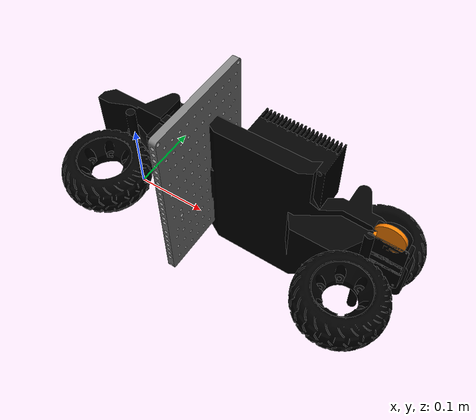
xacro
<?xml version="1.0"?>
<robot xmlns:xacro="http://www.ros.org/wiki/xacro" name="svea">

  <!-- 定义namespace参数，默认为空 -->
  <xacro:arg name="namespace" default="" />
  <xacro:property name="ns" value="$(arg namespace)" />

  <material name="black">
    <color rgba="0 0 0 1"/>
  </material>
  <material name="white">
    <color rgba="1 1 1 1"/>
  </material>
  <material name="grey">
    <color rgba="0.5 0.5 0.5 1"/>
  </material>
  <material name="orange">
    <color rgba="1 0.5 0 1"/>
  </material>

  <link name="${ns}base_link">
    <visual>
      <geometry>
        <mesh filename="package://svea_core/meshes/body.stl" scale="0.001 0.001 0.001"/>
      </geometry>
      <origin rpy="-1.57079632679 0 0" xyz="0.15 0 0.05785"/>
      <material name="black"/>
    </visual>
  </link>

  <link name="${ns}tire1">
    <visual>
      <geometry>
        <mesh filename="package://svea_core/meshes/tire.stl" scale="0.001 0.001 0.001"/>
      </geometry>
      <origin rpy="3.1415926 0 0" xyz="0.15 0 0.05785"/>
      <material name="black"/>
    </visual>
  </link>

  <joint name="${ns}base_to_tire1_front_left" type="fixed">
    <parent link="${ns}base_link"/>
    <child link="${ns}tire1"/>
    <origin xyz="0.19 0.06 0"/>
  </joint>

  <link name="${ns}tire2">
    <visual>
      <geometry>
        <mesh filename="package://svea_core/meshes/tire.stl" scale="0.001 0.001 0.001"/>
      </geometry>
      <origin rpy="0 0 0" xyz="0.15 0 0.05785"/>
      <material name="black"/>
    </visual>
  </link>

  <joint name="${ns}base_to_tire2_front_right" type="fixed">
    <parent link="${ns}base_link"/>
    <child link="${ns}tire2"/>
    <origin xyz="0.19 -0.06 0"/>
  </joint>

  <link name="${ns}tire3">
    <visual>
      <geometry>
        <mesh filename="package://svea_core/meshes/tire.stl" scale="0.001 0.001 0.001"/>
      </geometry>
      <origin rpy="3.1415926 0 0" xyz="0.15 0 0.05785"/>
      <material name="black"/>
    </visual>
  </link>

  <joint name="${ns}base_to_tire3_back_left" type="fixed">
    <parent link="${ns}base_link"/>
    <child link="${ns}tire3"/>
    <origin xyz="-0.15 0.06 0"/>
  </joint>

  <link name="${ns}tire4">
    <visual>
      <geometry>
        <mesh filename="package://svea_core/meshes/tire.stl" scale="0.001 0.001 0.001"/>
      </geometry>
      <origin rpy="0 0 0" xyz="0.15 0 0.05785"/>
      <material name="black"/>
    </visual>
  </link>

  <joint name="${ns}base_to_tire4_back_right" type="fixed">
    <parent link="${ns}base_link"/>
    <child link="${ns}tire4"/>
    <origin xyz="-0.15 -0.06 0"/>
  </joint>

  <link name="${ns}mount_body">
    <visual>
      <geometry>
        <mesh filename="package://svea_core/meshes/body166.stl" scale="0.001 0.001 0.001"/>
      </geometry>
      <origin rpy="0 0 1.57079632679" xyz="0.15 0 0"/>
      <material name="grey"/>
    </visual>
  </link>

  <joint name="${ns}base_to_mount_body" type="fixed">
    <parent link="${ns}base_link"/>
    <child link="${ns}mount_body"/>
    <origin xyz="-0.01 0.015 0.085"/>
  </joint>

  <link name="${ns}lidar_base">
    <visual>
      <geometry>
        <mesh filename="package://svea_core/meshes/lidar_base.stl" scale="0.001 0.001 0.001"/>
      </geometry>
      <origin rpy="-1.57079632679 0 0" xyz="0 -0.015 0"/>
      <material name="black"/>
    </visual>
  </link>

  <joint name="${ns}mount_body_to_lidar_base" type="fixed">
    <parent link="${ns}mount_body"/>
    <child link="${ns}lidar_base"/>
    <origin xyz="0.37 0 0"/>
  </joint>

  <link name="${ns}lidar_top">
    <visual>
      <geometry>
        <mesh filename="package://svea_core/meshes/lidar_top.stl" scale="0.001 0.001 0.001"/>
      </geometry>
      <origin rpy="-1.57079632679 0 0" xyz="0 -0.015 0"/>
      <material name="black"/>
    </visual>
  </link>

  <joint name="${ns}lidar_base_to_lidar_top" type="fixed">
    <parent link="${ns}lidar_base"/>
    <child link="${ns}lidar_top"/>
    <origin xyz="0 0 0.03"/>
  </joint>

  <link name="${ns}lidar_cap">
    <visual>
      <geometry>
        <mesh filename="package://svea_core/meshes/lidar_cap.stl" scale="0.001 0.001 0.001"/>
      </geometry>
      <origin rpy="-1.57079632679 0 0" xyz="0 -0.015 0"/>
      <material name="orange"/>
    </visual>
  </link>

  <joint name="${ns}lidar_top_to_lidar_cap" type="fixed">
    <parent link="${ns}lidar_top"/>
    <child link="${ns}lidar_cap"/>
    <origin xyz="0 0 0.03"/>
  </joint>

  <link name="${ns}zed_box">
    <visual>
      <geometry>
        <mesh filename="package://svea_core/meshes/ZED_Box.stl" scale="0.001 0.001 0.001"/>
      </geometry>
      <origin rpy="-1.57079632679 0 0" xyz="0 0 0"/>
      <material name="black"/>
    </visual>
  </link>

  <joint name="${ns}mount_body_to_zed_box" type="fixed">
    <parent link="${ns}mount_body"/>
    <child link="${ns}zed_box"/>
    <origin xyz="0.22 0.01 0.037"/>
  </joint>

</robot>
